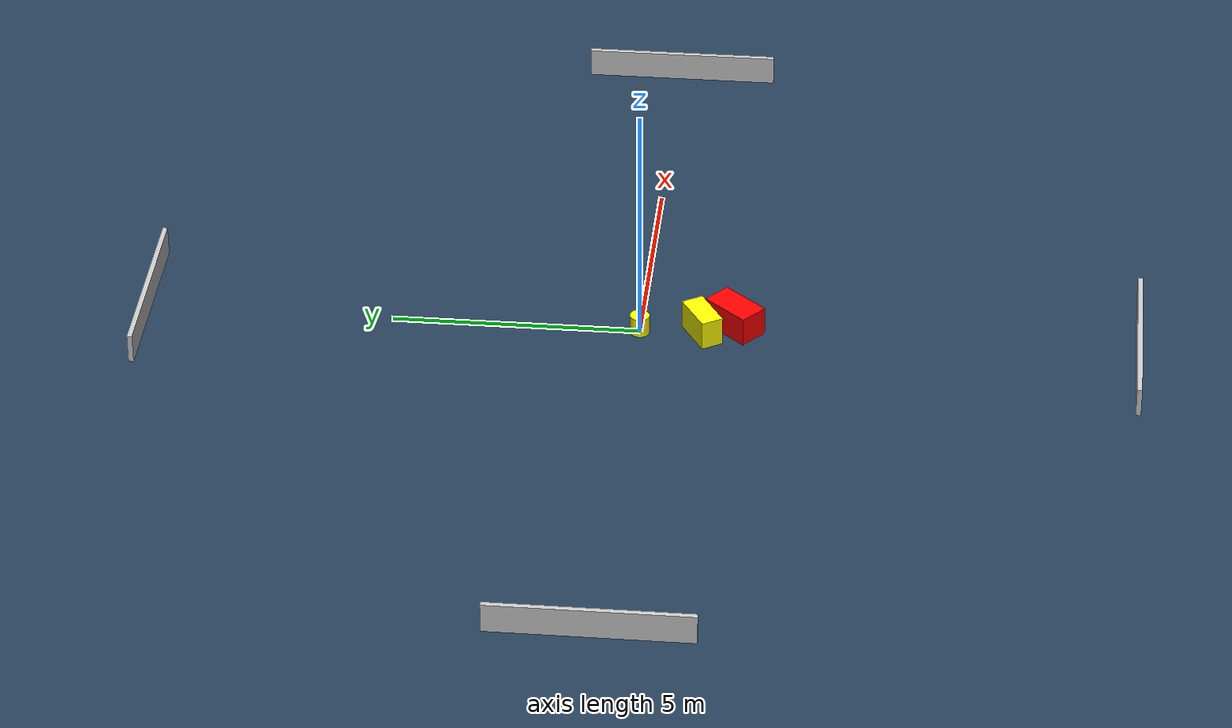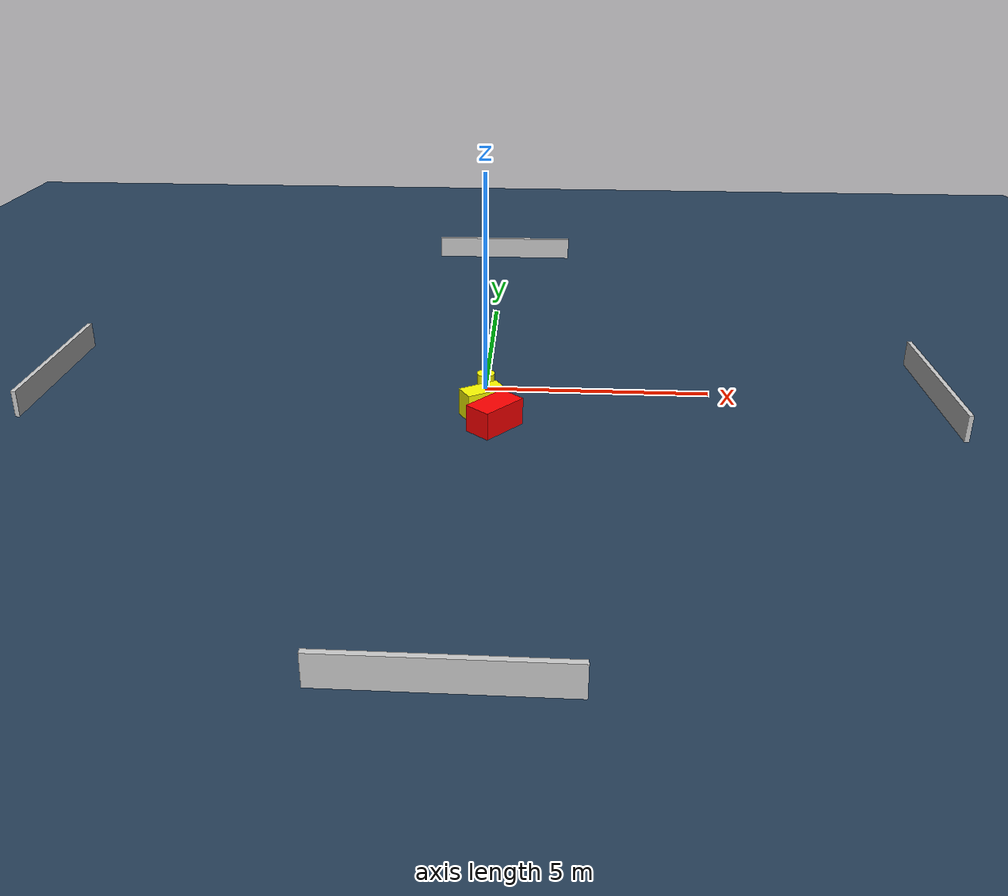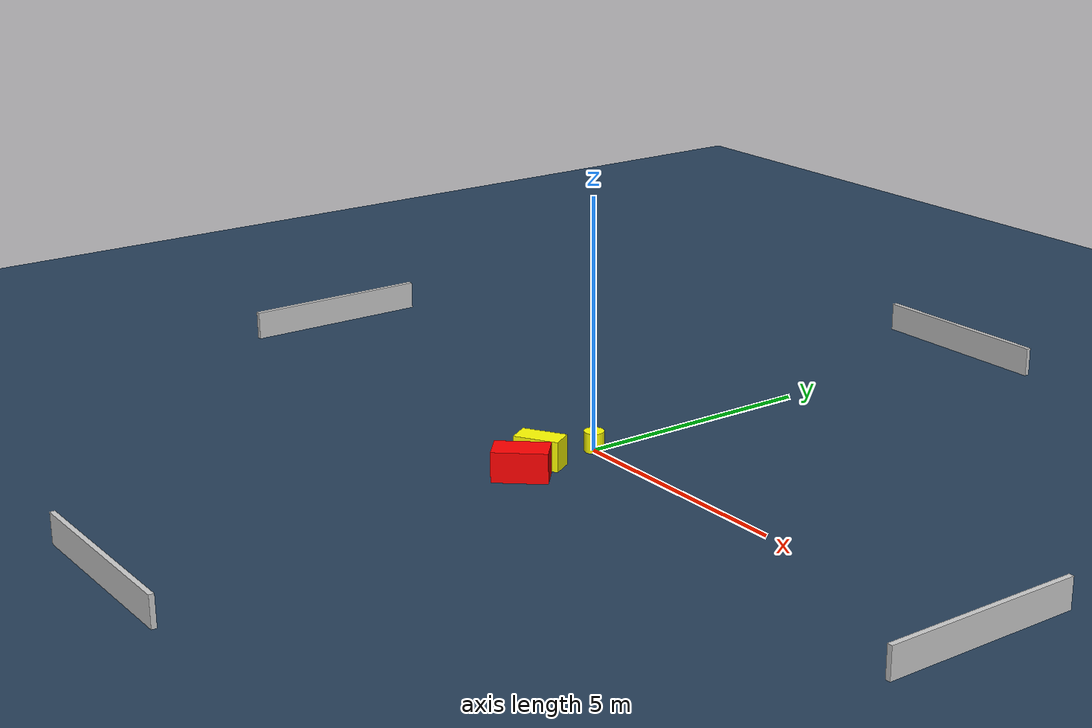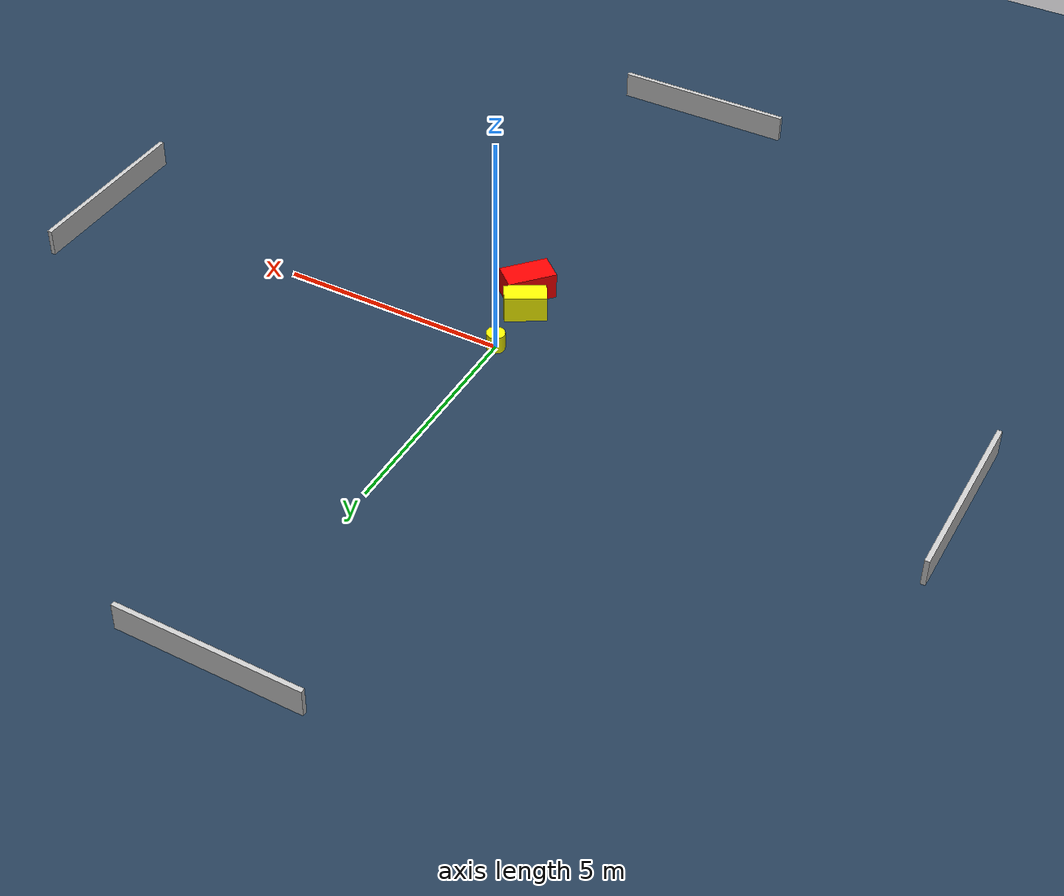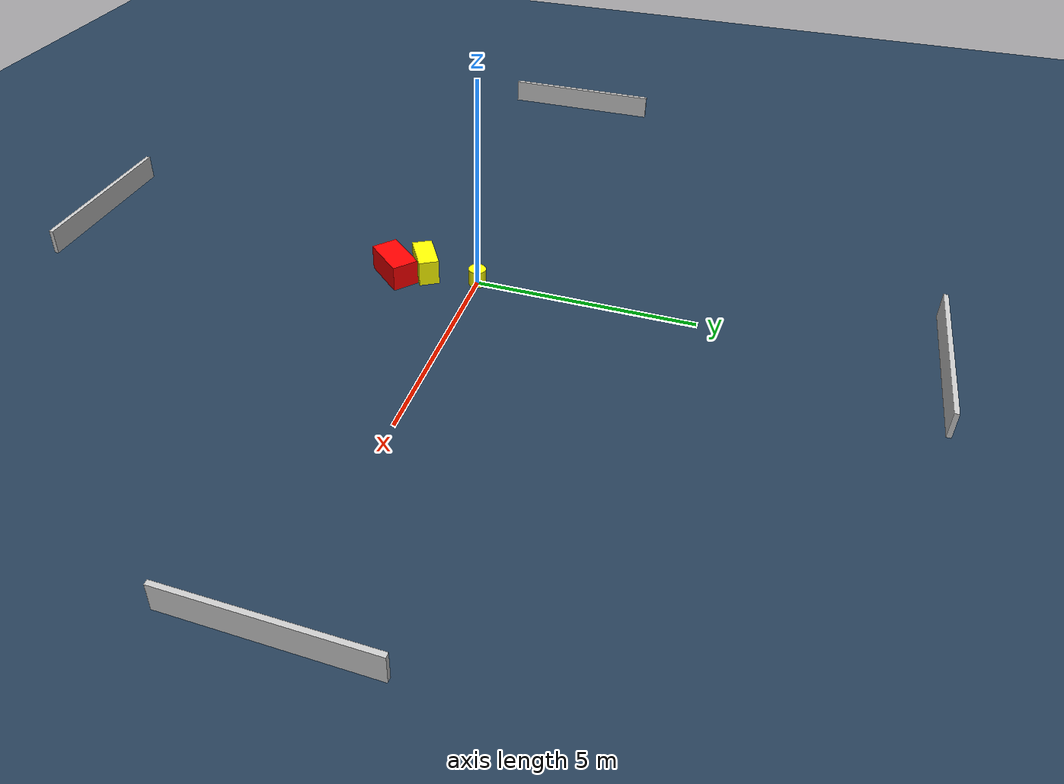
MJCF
<?xml version="1.0" ?>
<mujoco model="generated_environment">
  <option timestep="0.01" integrator="RK4" cone="elliptic"/>
  <default>
    <geom density="1"/>
  </default>
  <asset>
    <texture builtin="gradient" height="3072" name="skybox" rgb1="0.3 0.5 0.7" rgb2="0 0 0" type="skybox" width="512"/>
    <texture builtin="checker" height="300" name="groundplane" rgb1="0.2 0.3 0.4" rgb2="0.1 0.2 0.3" type="2d" width="300"/>
    <material name="groundplane" reflectance="0.2" texrepeat="5 5" texture="groundplane"/>
  </asset>
  <worldbody>
    <light dir="0 0 -1" directional="true" pos="0 0 1.5"/>
    <geom condim="3" friction="0.5 0.005 0.001" material="groundplane" name="floor" pos="0 0 0" size="0 0 0.05" type="plane"/>
    <body name="walls">
      <geom name="wall_1" condim="4" pos="-10.0 0.0 0.3" rgba="0.800000011920929 0.800000011920929 0.800000011920929 1.0" size="0.05 2.0 0.3" type="box"/>
      <geom name="wall_2" condim="4" pos="10.0 0.0 0.3" rgba="0.800000011920929 0.800000011920929 0.800000011920929 1.0" size="0.05 2.0 0.3" type="box"/>
      <geom name="wall_3" condim="4" pos="0.0 -10.0 0.3" rgba="0.800000011920929 0.800000011920929 0.800000011920929 1.0" size="2.0 0.05 0.3" type="box"/>
      <geom name="wall_4" condim="4" pos="0.0 10.0 0.3" rgba="0.800000011920929 0.800000011920929 0.800000011920929 1.0" size="2.0 0.05 0.3" type="box"/>
    </body>
    <body name="robot">
      <joint name="joint_x" type="slide" pos="0 0 0" axis="1 0 0"/>
      <joint name="joint_y" type="slide" pos="0 0 0" axis="0 1 0"/>
      <geom name="robot" type="cylinder" pos="0.0 0.0 0.2" size="0.2 0.2 0.0" mass="5.0" friction="1.0 0.005 0.0001" condim="4" rgba="1.0 1.0 0.0 1.0"/>
    </body>
    <body name="obstacle_1_movable">
      <geom name="obstacle_1_movable" condim="4" pos="0.004320532910934634 -1.2586544580132155 0.3" euler="0 0 211.1051857483339" friction="0.0 0.005 0.001" rgba="1.0 1.0 0.0 1.0" size="0.4548057636082301 0.2302050665039386 0.3" type="box" mass="0.1"/>
      <joint type="free"/>
    </body>
    <body name="obstacle_2_static">
      <geom name="obstacle_2_static" condim="4" pos="0.2982462334358222 -1.8987778599552858 0.3" euler="0 0 48.894114362796245" friction="0.0 0.005 0.001" rgba="1.0 0.0 0.0 1.0" size="0.5375613900645297 0.3055374230439983 0.3" type="box"/>
    </body>
  </worldbody>
  <actuator>
    <motor name="actuator_x" joint="joint_x" gear="1" ctrlrange="-1 1"/>
    <motor name="actuator_y" joint="joint_y" gear="1" ctrlrange="-1 1"/>
  </actuator>
</mujoco>
